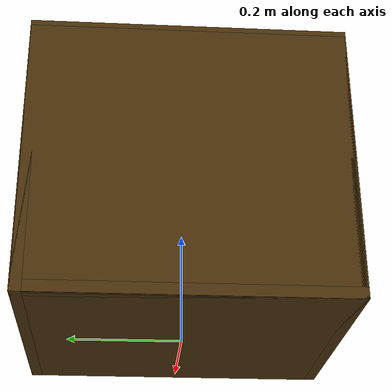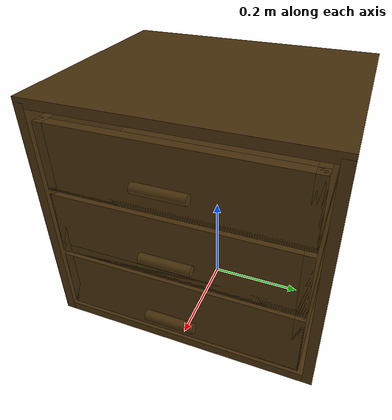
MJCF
<mujoco model="drawer">
  <compiler angle="radian" autolimits="true" />
  <option impratio="10" />
  <default>
    <default class="visual">
      <geom type="mesh" contype="0" conaffinity="0" group="2" />
    </default>
    <default class="collision">
      <geom type="mesh" group="3" />
    </default>
  </default>

  <asset>
    <material name="drawer_material" rgba="0.3 0.2 0.05 1" />
  </asset>
  <worldbody>
    <body name="drawer">
      <geom size="0.23 0.01 0.25" pos="0 -0.27 0.25" class="visual" type="box"
        material="drawer_material" />
      <geom size="0.23 0.01 0.25" pos="0 0.27 0.25" class="visual" type="box"
        material="drawer_material" />
      <geom size="0.23 0.28 0.01" pos="0 0 0.01" class="visual" type="box"
        material="drawer_material" />
      <geom size="0.23 0.28 0.01" pos="0 0 0.5" class="visual" type="box" material="drawer_material" />
      <geom size="0.01 0.28 0.25" pos="-0.22 0 0.25" class="visual" type="box"
        material="drawer_material" />

      <geom size="0.23 0.01 0.25" pos="0 -0.27 0.25" class="collision" type="box" />
      <geom size="0.23 0.01 0.25" pos="0 0.27 0.25" class="collision" type="box" />
      <geom size="0.23 0.28 0.01" pos="0 0 0.01" class="collision" type="box" />
      <geom size="0.23 0.28 0.01" pos="0 0 0.5" class="collision" type="box" />
      <geom size="0.01 0.28 0.25" pos="-0.22 0 0.25" class="collision" type="box" />

      <body name="bottom_drawer" pos="0.03 0 0.1">
        <joint name="bottom_drawer_slide" type="slide" axis="1 0 0" limited="true" range="0 0.4"
          damping="50.0" frictionloss="1.0" />

        <!-- bottom -->
        <geom size="0.2 0.25 0.01" class="visual" type="box" pos="0 0 -0.060000000000000005"
          material="drawer_material" />
        <!-- left and right -->
        <geom size="0.2 0.01 0.07" class="visual" type="box" pos="0 0.24 0"
          material="drawer_material" />
        <geom size="0.2 0.01 0.07" class="visual" type="box" pos="0 -0.24 0"
          material="drawer_material" />
        <!-- front and back -->
        <geom size="0.01 0.25 0.07" class="visual" type="box" pos="0.19 0 0"
          material="drawer_material" />
        <geom size="0.01 0.25 0.07" class="visual" type="box" pos="-0.19 0 0"
          material="drawer_material" />

        <!-- bottom -->
        <geom size="0.2 0.25 0.01" class="collision" type="box" pos="0 0 -0.060000000000000005" />
        <!-- left and right -->
        <geom size="0.2 0.01 0.07" class="collision" type="box" pos="0 0.24 0" />
        <geom size="0.2 0.01 0.07" class="collision" type="box" pos="0 -0.24 0" />
        <!-- front and back -->
        <geom size="0.01 0.25 0.07" class="collision" type="box" pos="0.19 0 0" />
        <geom size="0.01 0.25 0.07" class="collision" type="box" pos="-0.19 0 0" />

        <body name="bottom_drawer_handle" pos="0.23 0 0" euler="1.57 0 0">
          <geom size="0.01 0.05" class="visual" type="cylinder" material="drawer_material" />
          <geom size="0.01 0.05" class="collision" type="cylinder" />
        </body>
      </body>
      <body name="middle_drawer" pos="0.03 0 0.25">
        <joint name="middle_drawer_slide" type="slide" axis="1 0 0" limited="true" range="0 0.4"
          damping="50.0" frictionloss="1.0" />

        <!-- bottom -->
        <geom size="0.2 0.25 0.01" class="visual" type="box" pos="0 0 -0.060000000000000005"
          material="drawer_material" />
        <!-- left and right -->
        <geom size="0.2 0.01 0.07" class="visual" type="box" pos="0 0.24 0"
          material="drawer_material" />
        <geom size="0.2 0.01 0.07" class="visual" type="box" pos="0 -0.24 0"
          material="drawer_material" />
        <!-- front and back -->
        <geom size="0.01 0.25 0.07" class="visual" type="box" pos="0.19 0 0"
          material="drawer_material" />
        <geom size="0.01 0.25 0.07" class="visual" type="box" pos="-0.19 0 0"
          material="drawer_material" />

        <!-- bottom -->
        <geom size="0.2 0.25 0.01" class="collision" type="box" pos="0 0 -0.060000000000000005" />
        <!-- left and right -->
        <geom size="0.2 0.01 0.07" class="collision" type="box" pos="0 0.24 0" />
        <geom size="0.2 0.01 0.07" class="collision" type="box" pos="0 -0.24 0" />
        <!-- front and back -->
        <geom size="0.01 0.25 0.07" class="collision" type="box" pos="0.19 0 0" />
        <geom size="0.01 0.25 0.07" class="collision" type="box" pos="-0.19 0 0" />

        <body name="middle_drawer_handle" pos="0.23 0 0" euler="1.57 0 0">
          <geom size="0.01 0.05" class="visual" type="cylinder" material="drawer_material" />
          <geom size="0.01 0.05" class="collision" type="cylinder" />
        </body>
      </body>
      <body name="top_drawer" pos="0.03 0 0.4">
        <joint name="top_drawer_slide" type="slide" axis="1 0 0" limited="true" range="0 0.4"
          damping="50.0" frictionloss="1.0" />

        <!-- bottom -->
        <geom size="0.2 0.25 0.01" class="visual" type="box" pos="0 0 -0.060000000000000005"
          material="drawer_material" />
        <!-- left and right -->
        <geom size="0.2 0.01 0.07" class="visual" type="box" pos="0 0.24 0"
          material="drawer_material" />
        <geom size="0.2 0.01 0.07" class="visual" type="box" pos="0 -0.24 0"
          material="drawer_material" />
        <!-- front and back -->
        <geom size="0.01 0.25 0.07" class="visual" type="box" pos="0.19 0 0"
          material="drawer_material" />
        <geom size="0.01 0.25 0.07" class="visual" type="box" pos="-0.19 0 0"
          material="drawer_material" />

        <!-- bottom -->
        <geom size="0.2 0.25 0.01" class="collision" type="box" pos="0 0 -0.060000000000000005" />
        <!-- left and right -->
        <geom size="0.2 0.01 0.07" class="collision" type="box" pos="0 0.24 0" />
        <geom size="0.2 0.01 0.07" class="collision" type="box" pos="0 -0.24 0" />
        <!-- front and back -->
        <geom size="0.01 0.25 0.07" class="collision" type="box" pos="0.19 0 0" />
        <geom size="0.01 0.25 0.07" class="collision" type="box" pos="-0.19 0 0" />

        <body name="top_drawer_handle" pos="0.23 0 0" euler="1.57 0 0">
          <geom size="0.01 0.05" class="visual" type="cylinder" material="drawer_material" />
          <geom size="0.01 0.05" class="collision" type="cylinder" />
        </body>
      </body>
    </body>

  </worldbody>
</mujoco>
